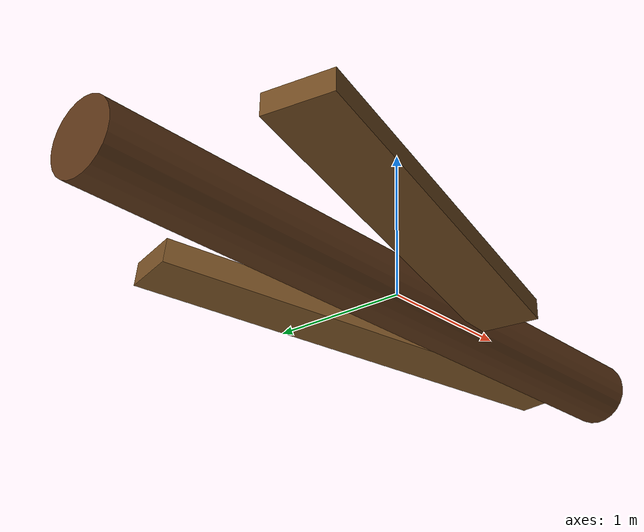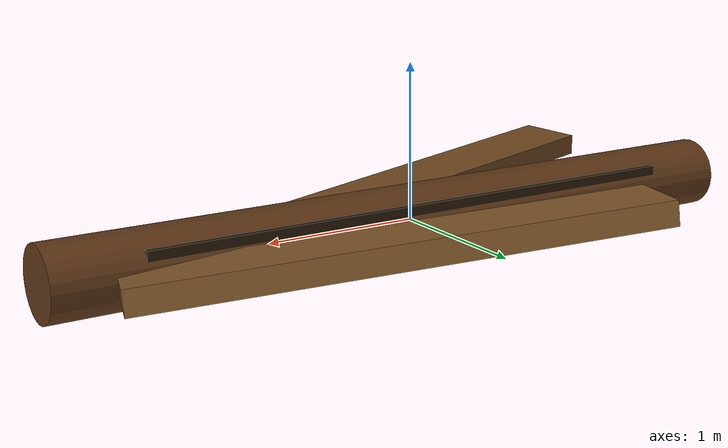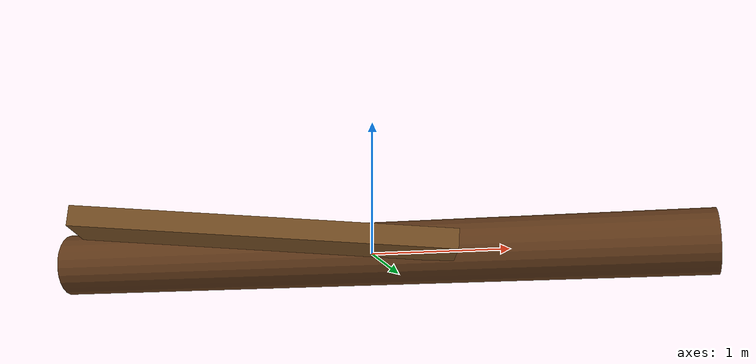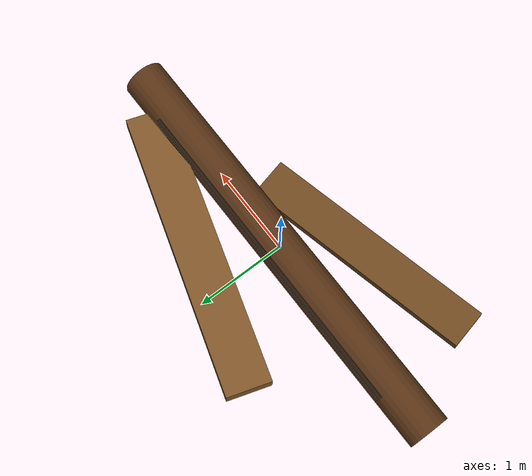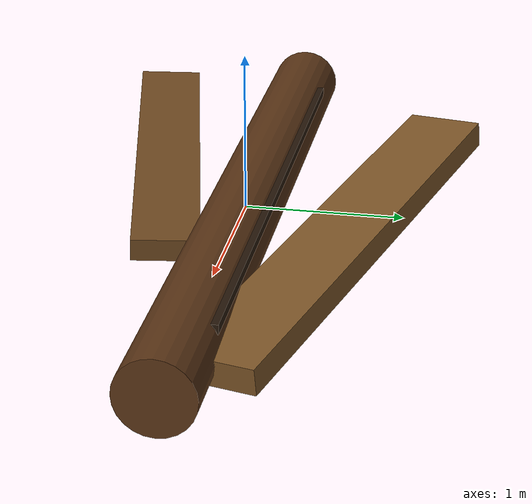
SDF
<?xml version="1.0"?>
<sdf version="1.10"><model name="driftwood"><link name="timber">
  <inertial><mass>55</mass><inertia><ixx>6</ixx><iyy>70</iyy><izz>72</izz></inertia></inertial>
  <collision name="log_collision"><pose>0 0 0 0 1.5708 0</pose><geometry><cylinder><radius>0.22</radius><length>4.8</length></cylinder></geometry></collision>
  <collision name="plank_collision"><pose>0.5 0.7 0.08 0.05 0.08 -0.3</pose><geometry><box><size>3.2 0.48 0.16</size></box></geometry></collision>
  <visual name="log"><pose>0 0 0 0 1.5708 0</pose><geometry><cylinder><radius>0.23</radius><length>4.8</length></cylinder></geometry><material><ambient>0.19 0.11 0.055 1</ambient><diffuse>0.36 0.21 0.09 1</diffuse><specular>0.05 0.04 0.03 1</specular></material></visual>
  <visual name="bark_strip"><pose>0 0.17 0.12 0 0 0</pose><geometry><box><size>3.7 0.09 0.06</size></box></geometry><material><ambient>0.08 0.05 0.025 1</ambient><diffuse>0.15 0.09 0.04 1</diffuse></material></visual>
  <visual name="plank_a"><pose>0.5 0.7 0.08 0.05 0.08 -0.3</pose><geometry><box><size>3.2 0.48 0.16</size></box></geometry><material><ambient>0.27 0.18 0.09 1</ambient><diffuse>0.5 0.34 0.16 1</diffuse></material></visual>
  <visual name="plank_b"><pose>-0.6 -0.65 0.05 -0.04 0.06 0.22</pose><geometry><box><size>2.6 0.42 0.14</size></box></geometry><material><ambient>0.24 0.16 0.08 1</ambient><diffuse>0.44 0.29 0.13 1</diffuse></material></visual>
  </link><plugin filename="libBoatWaveFollower.so" name="gz::sim::systems::BoatWaveFollower"><mean_z>0.1</mean_z><heave_amplitude>0.09</heave_amplitude><roll_amplitude>0.13</roll_amplitude><pitch_amplitude>0.1</pitch_amplitude><primary_frequency>1</primary_frequency><secondary_frequency>1.55</secondary_frequency></plugin></model></sdf>
